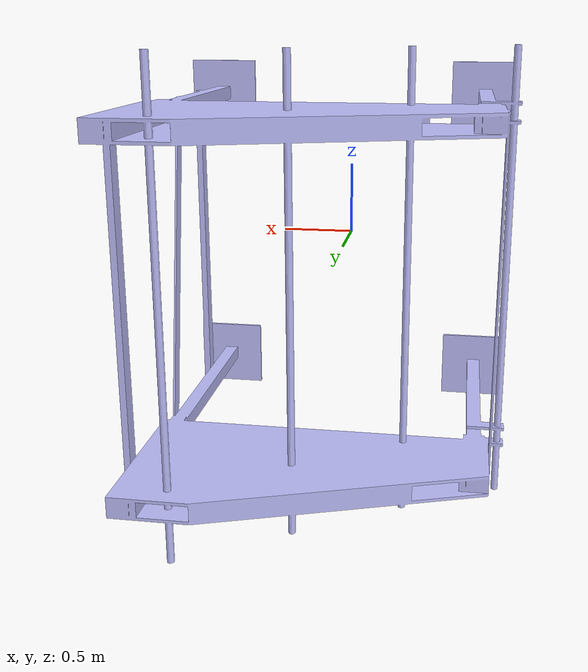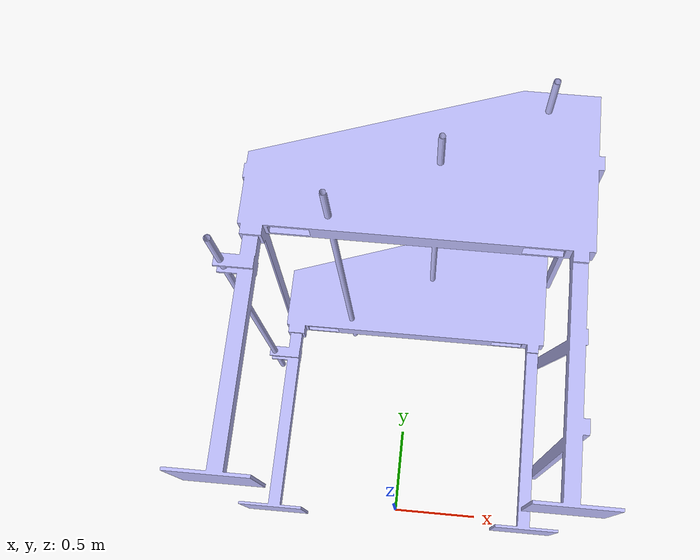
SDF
<?xml version="1.0" encoding="utf-8"?>
<sdf version="1.5">
  <model name="BlueHanger">
    <pose>0 0 0 0 0 0</pose>
    <link name="BlueHanger">
      <gravity>1</gravity>
      <self_collide>0</self_collide>
      <pose>0.167265109085238 1.47673580997936 -2.04343317332631E-06 0 0 0</pose>
      <must_be_base_link>1</must_be_base_link>
      <velocity_decay>
        <linear>0</linear>
        <angular>0</angular>
      </velocity_decay>
      <inertial>
        <mass>249.005529427352</mass>
        <pose>0 0 0 0 0 0</pose>
        <inertia>
          <ixx>301.247010703051</ixx>
          <ixy>12.1708648417498</ixy>
          <ixz>0.00183170061089966</ixz>
          <iyy>335.020417516745</iyy>
          <iyz>0.000428422278406581</iyz>
          <izz>182.220226765704</izz>
        </inertia>
      </inertial>
      <collision name="BlueHanger_collision">
        <pose>-0.167265109085238 -1.47673580997936 2.04343317332631E-06 0 0 0</pose>
        <geometry>
          <mesh>
            <scale>1 1 1</scale>
            <uri>model://BlueHanger/meshes/Hanger_col.STL</uri>
          </mesh>
        </geometry>
        <surface>
          <contact>
            <ode />
          </contact>
          <friction>
            <ode>
              <mu>0</mu>
              <mu2>0</mu2>
            </ode>
          </friction>
        </surface>
      </collision>
      <visual name="BlueHanger_visual">
        <pose>-0.167265109085238 -1.47673580997936 2.04343317332631E-06 0 0 0</pose>
        <material>
          <ambient>0.752941176470588 0.752941176470588 1 1</ambient>
          <diffuse>0.752941176470588 0.752941176470588 1 1</diffuse>
        </material>
        <geometry>
          <mesh>
            <scale>1 1 1</scale>
            <uri>model://BlueHanger/meshes/Hanger.STL</uri>
          </mesh>
        </geometry>
      </visual>
    </link>
    <joint name="BlueHanger-World" type="fixed">
      <parent>world</parent>
      <child>BlueHanger</child>
   </joint>

  </model>
</sdf>
